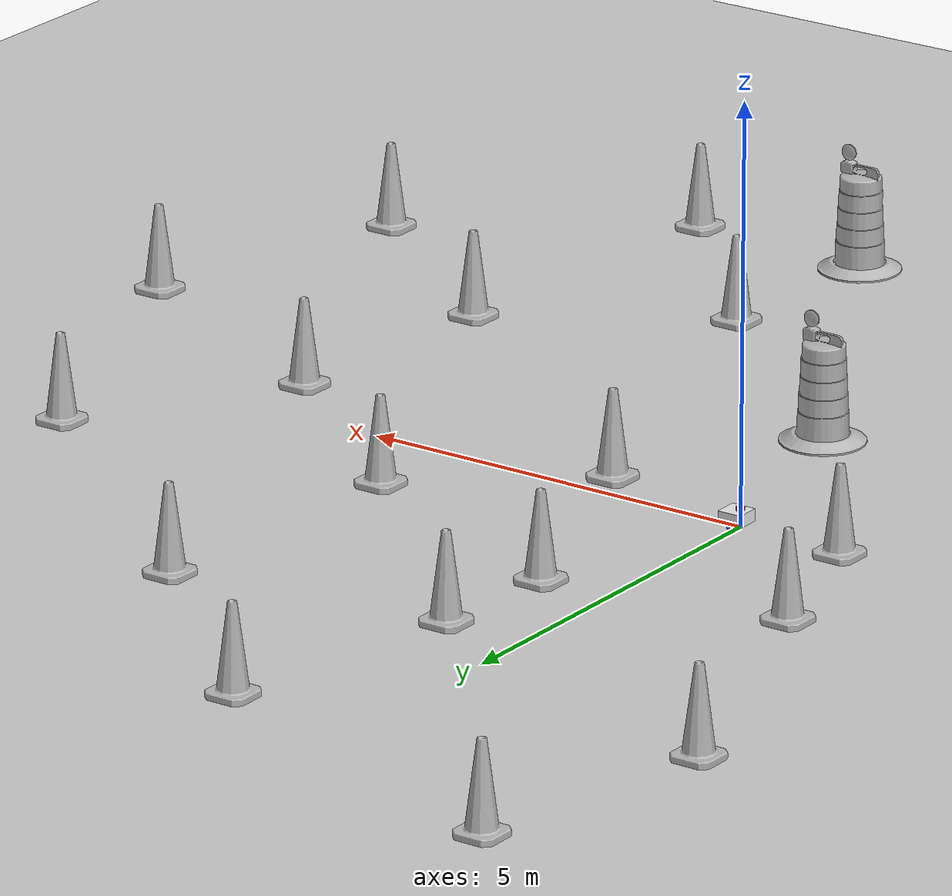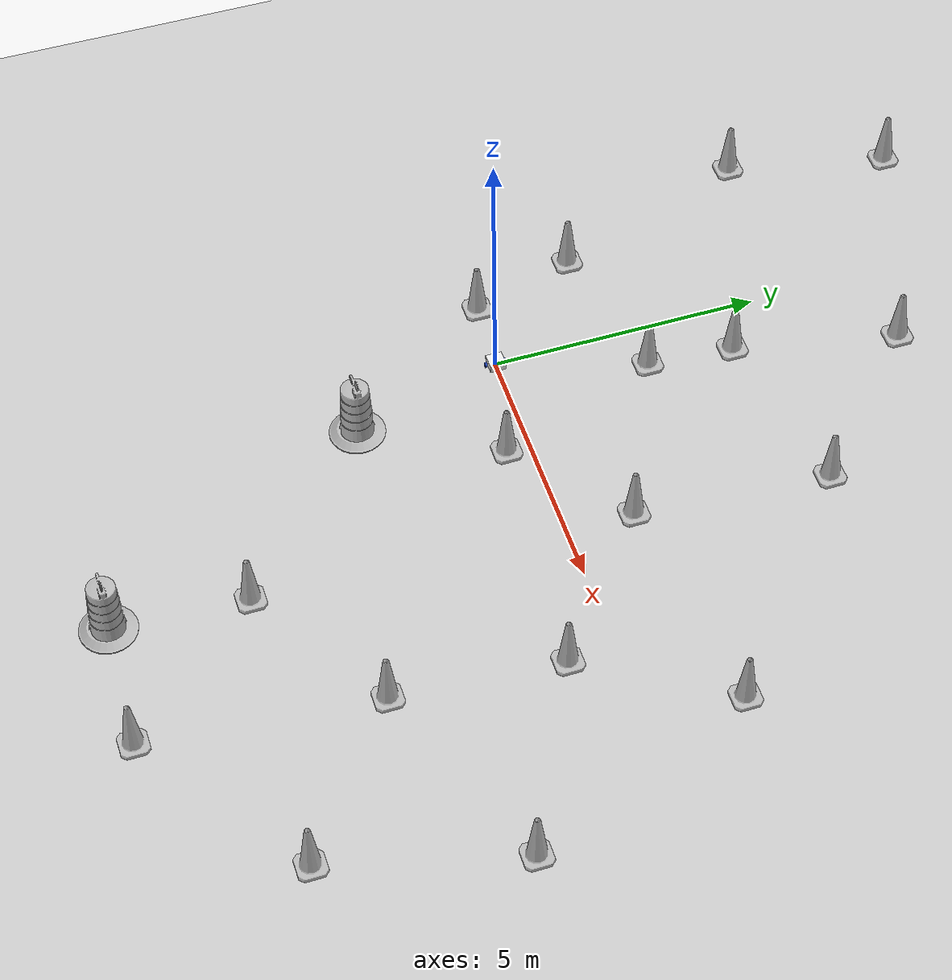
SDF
<sdf version="1.7">
 <world name="default">
  <light name="sun" type="directional">
   <pose>0 0 10 0 -0 0</pose>
   <diffuse>0.8 0.8 0.8 1</diffuse>
   <specular>0.2 0.2 0.2 1</specular>
   <attenuation>
    <range>1000</range>
    <constant>0.9</constant>
    <linear>0.01</linear>
    <quadratic>0.001</quadratic>
   </attenuation>
   <direction>-0.5 0.1 -0.9</direction>
   <spot><inner_angle>0</inner_angle><outer_angle>0</outer_angle><falloff>0</falloff></spot>
  </light>
  <model name="ground_plane">
   <static>1</static>
   <link name="link">
    <collision name="collision">
     <geometry><plane><normal>0 0 1</normal><size>100 100</size></plane></geometry>
     <surface><friction><ode><mu>100</mu><mu2>50</mu2></ode></friction></surface>
    </collision>
    <visual name="visual">
     <cast_shadows>0</cast_shadows>
     <geometry><plane><normal>0 0 1</normal><size>100 100</size></plane></geometry>
     <material>
      <script><uri>file://media/materials/scripts/gazebo.material</uri><name>Gazebo/Grey</name></script>
     </material>
    </visual>
   </link>
  </model>
  <gravity>0 0 -9.8</gravity>
  <magnetic_field>6e-06 2.3e-05 -4.2e-05</magnetic_field>
  <atmosphere type="adiabatic"/>
  <physics type="ode">
   <max_step_size>0.001</max_step_size>
   <real_time_factor>1</real_time_factor>
   <real_time_update_rate>1000</real_time_update_rate>
  </physics>
  <scene><ambient>0.4 0.4 0.4 1</ambient><background>0.7 0.7 0.7 1</background><shadows>1</shadows></scene>
  <audio><device>default</device></audio>
  <spherical_coordinates>
   <surface_model>EARTH_WGS84</surface_model>
   <latitude_deg>0</latitude_deg>
   <longitude_deg>0</longitude_deg>
   <elevation>0</elevation>
   <heading_deg>0</heading_deg>
  </spherical_coordinates>
  <model name="my_bot">
   <link name="base_link">
    <inertial>
     <pose>0.055714 0 0.078571 0 -0 0</pose>
     <mass>0.7</mass>
     <inertia>
      <ixx>0.0064169</ixx>
      <ixy>0</ixy>
      <ixz>0.00118929</ixz>
      <iyy>0.00745405</iyy>
      <iyz>0</iyz>
      <izz>0.00876214</izz>
     </inertia>
    </inertial>
    <collision name="base_link_fixed_joint_lump__chassis_collision">
     <pose>0.05 0 0.075 0 -0 0</pose>
     <geometry><box><size>0.3 0.3 0.15</size></box></geometry>
    </collision>
    <collision name="base_link_fixed_joint_lump__caster_wheel_collision_1">
     <pose>0.14 0 0 0 -0 0</pose>
     <geometry><sphere><radius>0.05</radius></sphere></geometry>
     <surface><friction><ode><mu>0.001</mu><mu2>0.001</mu2></ode></friction></surface>
    </collision>
    <collision name="base_link_fixed_joint_lump__laser_frame_collision_2">
     <pose>0 0 0.175 0 -0 0</pose>
     <geometry><cylinder><length>0.04</length><radius>0.05</radius></cylinder></geometry>
    </collision>
    <visual name="base_link_fixed_joint_lump__chassis_visual">
     <pose>0.05 0 0.075 0 -0 0</pose>
     <geometry><box><size>0.3 0.3 0.15</size></box></geometry>
     <material>
      <script><name>Gazebo/White</name><uri>file://media/materials/scripts/gazebo.material</uri></script>
     </material>
    </visual>
    <visual name="base_link_fixed_joint_lump__caster_wheel_visual_1">
     <pose>0.14 0 0 0 -0 0</pose>
     <geometry><sphere><radius>0.05</radius></sphere></geometry>
     <material>
      <script><name>Gazebo/Black</name><uri>file://media/materials/scripts/gazebo.material</uri></script>
     </material>
    </visual>
    <visual name="base_link_fixed_joint_lump__laser_frame_visual_2">
     <pose>0 0 0.175 0 -0 0</pose>
     <geometry><cylinder><length>0.04</length><radius>0.05</radius></cylinder></geometry>
     <material>
      <script><name>Gazebo/Red</name><uri>file://media/materials/scripts/gazebo.material</uri></script>
     </material>
    </visual>
    <sensor name="laser" type="ray">
     <visualize>1</visualize>
     <update_rate>10</update_rate>
     <ray>
      <scan>
       <horizontal>
        <samples>360</samples>
        <min_angle>-3.14</min_angle>
        <max_angle>3.14</max_angle>
        <resolution>1</resolution>
       </horizontal>
       <vertical><samples>1</samples><min_angle>0</min_angle><max_angle>0</max_angle></vertical>
      </scan>
      <range><min>0.3</min><max>12</max></range>
     </ray>
     <plugin name="laser_controller" filename="libgazebo_ros_ray_sensor.so">
      <ros><argument>~/out:=scan</argument></ros>
      <output_type>sensor_msgs/LaserScan</output_type>
      <frame_name>laser_frame</frame_name>
     </plugin>
     <pose>0 0 0.175 0 -0 0</pose>
    </sensor>
   </link>
   <joint name="left_wheel_joint" type="revolute">
    <pose relative_to="base_link">0 0.175 0 -1.5708 0 0</pose>
    <parent>base_link</parent>
    <child>left_wheel</child>
    <axis>
     <xyz>0 0 1</xyz>
     <limit><lower>-1e+16</lower><upper>1e+16</upper></limit>
     <dynamics><spring_reference>0</spring_reference><spring_stiffness>0</spring_stiffness></dynamics>
    </axis>
   </joint>
   <link name="left_wheel">
    <pose relative_to="left_wheel_joint">0 0 0 0 -0 0</pose>
    <inertial>
     <mass>0.1</mass>
     <inertia>
      <ixx>7.58333e-05</ixx>
      <ixy>0</ixy>
      <ixz>0</ixz>
      <iyy>7.58333e-05</iyy>
      <iyz>0</iyz>
      <izz>0.000125</izz>
     </inertia>
    </inertial>
    <collision name="left_wheel_collision">
     <geometry><cylinder><length>0.04</length><radius>0.05</radius></cylinder></geometry>
    </collision>
    <visual name="left_wheel_visual">
     <geometry><cylinder><length>0.04</length><radius>0.05</radius></cylinder></geometry>
     <material>
      <script><name>Gazebo/Blue</name><uri>file://media/materials/scripts/gazebo.material</uri></script>
     </material>
    </visual>
   </link>
   <joint name="right_wheel_joint" type="revolute">
    <pose relative_to="base_link">0 -0.175 0 1.5708 -0 0</pose>
    <parent>base_link</parent>
    <child>right_wheel</child>
    <axis>
     <xyz>0 0 -1</xyz>
     <limit><lower>-1e+16</lower><upper>1e+16</upper></limit>
     <dynamics><spring_reference>0</spring_reference><spring_stiffness>0</spring_stiffness></dynamics>
    </axis>
   </joint>
   <link name="right_wheel">
    <pose relative_to="right_wheel_joint">0 0 0 0 -0 0</pose>
    <inertial>
     <mass>0.1</mass>
     <inertia>
      <ixx>7.58333e-05</ixx>
      <ixy>0</ixy>
      <ixz>0</ixz>
      <iyy>7.58333e-05</iyy>
      <iyz>0</iyz>
      <izz>0.000125</izz>
     </inertia>
    </inertial>
    <collision name="right_wheel_collision">
     <geometry><cylinder><length>0.04</length><radius>0.05</radius></cylinder></geometry>
    </collision>
    <visual name="right_wheel_visual">
     <geometry><cylinder><length>0.04</length><radius>0.05</radius></cylinder></geometry>
     <material>
      <script><name>Gazebo/Blue</name><uri>file://media/materials/scripts/gazebo.material</uri></script>
     </material>
    </visual>
   </link>
   <static>0</static>
   <plugin name="diff_drive" filename="libgazebo_ros_diff_drive.so">
    <left_joint>left_wheel_joint</left_joint>
    <right_joint>right_wheel_joint</right_joint>
    <wheel_separation>0.35</wheel_separation>
    <wheel_diameter>0.1</wheel_diameter>
    <max_wheel_torque>200</max_wheel_torque>
    <max_wheel_acceleration>10.0</max_wheel_acceleration>
    <odometry_frame>odom</odometry_frame>
    <robot_base_frame>base_link</robot_base_frame>
    <publish_odom>1</publish_odom>
    <publish_odom_tf>1</publish_odom_tf>
    <publish_wheel_tf>1</publish_wheel_tf>
   </plugin>
   <pose>0.004448 3.1e-05 0.05 -0 1.2e-05 9.9e-05</pose>
  </model>
  <model name="Construction Cone">
   <link name="link">
    <collision name="collision">
     <geometry>
      <mesh><scale>10 10 10</scale><uri>model://construction_cone/meshes/construction_cone.dae</uri></mesh>
     </geometry>
    </collision>
    <visual name="visual">
     <geometry>
      <mesh><scale>10 10 10</scale><uri>model://construction_cone/meshes/construction_cone.dae</uri></mesh>
     </geometry>
    </visual>
    <inertial>
     <inertia><ixx>1</ixx><ixy>0</ixy><ixz>0</ixz><iyy>1</iyy><iyz>0</iyz><izz>1</izz></inertia>
     <mass>1</mass>
    </inertial>
   </link>
   <pose>-1.37739 0.100467 -0 0 -0 0</pose>
  </model>
  <model name="Construction Cone_0">
   <link name="link">
    <collision name="collision">
     <geometry>
      <mesh><scale>10 10 10</scale><uri>model://construction_cone/meshes/construction_cone.dae</uri></mesh>
     </geometry>
    </collision>
    <visual name="visual">
     <geometry>
      <mesh><scale>10 10 10</scale><uri>model://construction_cone/meshes/construction_cone.dae</uri></mesh>
     </geometry>
    </visual>
    <inertial>
     <inertia><ixx>1</ixx><ixy>0</ixy><ixz>0</ixz><iyy>1</iyy><iyz>0</iyz><izz>1</izz></inertia>
     <mass>1</mass>
    </inertial>
   </link>
   <pose>-1.99169 2.06443 -1e-05 0 -0 0</pose>
  </model>
  <model name="Construction Cone_1">
   <link name="link">
    <collision name="collision">
     <geometry>
      <mesh><scale>10 10 10</scale><uri>model://construction_cone/meshes/construction_cone.dae</uri></mesh>
     </geometry>
    </collision>
    <visual name="visual">
     <geometry>
      <mesh><scale>10 10 10</scale><uri>model://construction_cone/meshes/construction_cone.dae</uri></mesh>
     </geometry>
    </visual>
    <inertial>
     <inertia><ixx>1</ixx><ixy>0</ixy><ixz>0</ixz><iyy>1</iyy><iyz>0</iyz><izz>1</izz></inertia>
     <mass>1</mass>
    </inertial>
   </link>
   <pose>-3.36347 5.82388 -0 0 -1e-06 0</pose>
  </model>
  <model name="Construction Cone_2">
   <link name="link">
    <collision name="collision">
     <geometry>
      <mesh><scale>10 10 10</scale><uri>model://construction_cone/meshes/construction_cone.dae</uri></mesh>
     </geometry>
    </collision>
    <visual name="visual">
     <geometry>
      <mesh><scale>10 10 10</scale><uri>model://construction_cone/meshes/construction_cone.dae</uri></mesh>
     </geometry>
    </visual>
    <inertial>
     <inertia><ixx>1</ixx><ixy>0</ixy><ixz>0</ixz><iyy>1</iyy><iyz>0</iyz><izz>1</izz></inertia>
     <mass>1</mass>
    </inertial>
   </link>
   <pose>-2.6964 8.79624 -3e-06 3e-06 1e-06 -0</pose>
  </model>
  <model name="Construction Cone_3">
   <link name="link">
    <collision name="collision">
     <geometry>
      <mesh><scale>10 10 10</scale><uri>model://construction_cone/meshes/construction_cone.dae</uri></mesh>
     </geometry>
    </collision>
    <visual name="visual">
     <geometry>
      <mesh><scale>10 10 10</scale><uri>model://construction_cone/meshes/construction_cone.dae</uri></mesh>
     </geometry>
    </visual>
    <inertial>
     <inertia><ixx>1</ixx><ixy>0</ixy><ixz>0</ixz><iyy>1</iyy><iyz>0</iyz><izz>1</izz></inertia>
     <mass>1</mass>
    </inertial>
   </link>
   <pose>1.63837 7.23812 -0 1e-06 -0 0</pose>
  </model>
  <model name="Construction Cone_4">
   <link name="link">
    <collision name="collision">
     <geometry>
      <mesh><scale>10 10 10</scale><uri>model://construction_cone/meshes/construction_cone.dae</uri></mesh>
     </geometry>
    </collision>
    <visual name="visual">
     <geometry>
      <mesh><scale>10 10 10</scale><uri>model://construction_cone/meshes/construction_cone.dae</uri></mesh>
     </geometry>
    </visual>
    <inertial>
     <inertia><ixx>1</ixx><ixy>0</ixy><ixz>0</ixz><iyy>1</iyy><iyz>0</iyz><izz>1</izz></inertia>
     <mass>1</mass>
    </inertial>
   </link>
   <pose>4.31511 4.81251 -0 0 -1e-06 0</pose>
  </model>
  <model name="Construction Cone_5">
   <link name="link">
    <collision name="collision">
     <geometry>
      <mesh><scale>10 10 10</scale><uri>model://construction_cone/meshes/construction_cone.dae</uri></mesh>
     </geometry>
    </collision>
    <visual name="visual">
     <geometry>
      <mesh><scale>10 10 10</scale><uri>model://construction_cone/meshes/construction_cone.dae</uri></mesh>
     </geometry>
    </visual>
    <inertial>
     <inertia><ixx>1</ixx><ixy>0</ixy><ixz>0</ixz><iyy>1</iyy><iyz>0</iyz><izz>1</izz></inertia>
     <mass>1</mass>
    </inertial>
   </link>
   <pose>8.22411 1.70239 -0 0 -0 0</pose>
  </model>
  <model name="Construction Cone_6">
   <link name="link">
    <collision name="collision">
     <geometry>
      <mesh><scale>10 10 10</scale><uri>model://construction_cone/meshes/construction_cone.dae</uri></mesh>
     </geometry>
    </collision>
    <visual name="visual">
     <geometry>
      <mesh><scale>10 10 10</scale><uri>model://construction_cone/meshes/construction_cone.dae</uri></mesh>
     </geometry>
    </visual>
    <inertial>
     <inertia><ixx>1</ixx><ixy>0</ixy><ixz>0</ixz><iyy>1</iyy><iyz>0</iyz><izz>1</izz></inertia>
     <mass>1</mass>
    </inertial>
   </link>
   <pose>10.0157 -2.51914 -0 0 -0 0</pose>
  </model>
  <model name="Construction Cone_7">
   <link name="link">
    <collision name="collision">
     <geometry>
      <mesh><scale>10 10 10</scale><uri>model://construction_cone/meshes/construction_cone.dae</uri></mesh>
     </geometry>
    </collision>
    <visual name="visual">
     <geometry>
      <mesh><scale>10 10 10</scale><uri>model://construction_cone/meshes/construction_cone.dae</uri></mesh>
     </geometry>
    </visual>
    <inertial>
     <inertia><ixx>1</ixx><ixy>0</ixy><ixz>0</ixz><iyy>1</iyy><iyz>0</iyz><izz>1</izz></inertia>
     <mass>1</mass>
    </inertial>
   </link>
   <pose>9.09216 -5.96191 -0 0 -0 0</pose>
  </model>
  <model name="Construction Cone_8">
   <link name="link">
    <collision name="collision">
     <geometry>
      <mesh><scale>10 10 10</scale><uri>model://construction_cone/meshes/construction_cone.dae</uri></mesh>
     </geometry>
    </collision>
    <visual name="visual">
     <geometry>
      <mesh><scale>10 10 10</scale><uri>model://construction_cone/meshes/construction_cone.dae</uri></mesh>
     </geometry>
    </visual>
    <inertial>
     <inertia><ixx>1</ixx><ixy>0</ixy><ixz>0</ixz><iyy>1</iyy><iyz>0</iyz><izz>1</izz></inertia>
     <mass>1</mass>
    </inertial>
   </link>
   <pose>6.0046 -8.10721 -0 0 -0 0</pose>
  </model>
  <model name="Construction Cone_9">
   <link name="link">
    <collision name="collision">
     <geometry>
      <mesh><scale>10 10 10</scale><uri>model://construction_cone/meshes/construction_cone.dae</uri></mesh>
     </geometry>
    </collision>
    <visual name="visual">
     <geometry>
      <mesh><scale>10 10 10</scale><uri>model://construction_cone/meshes/construction_cone.dae</uri></mesh>
     </geometry>
    </visual>
    <inertial>
     <inertia><ixx>1</ixx><ixy>0</ixy><ixz>0</ixz><iyy>1</iyy><iyz>0</iyz><izz>1</izz></inertia>
     <mass>1</mass>
    </inertial>
   </link>
   <pose>2.02293 -0.431569 -1e-05 0 -0 0</pose>
  </model>
  <model name="Construction Cone_10">
   <link name="link">
    <collision name="collision">
     <geometry>
      <mesh><scale>10 10 10</scale><uri>model://construction_cone/meshes/construction_cone.dae</uri></mesh>
     </geometry>
    </collision>
    <visual name="visual">
     <geometry>
      <mesh><scale>10 10 10</scale><uri>model://construction_cone/meshes/construction_cone.dae</uri></mesh>
     </geometry>
    </visual>
    <inertial>
     <inertia><ixx>1</ixx><ixy>0</ixy><ixz>0</ixz><iyy>1</iyy><iyz>0</iyz><izz>1</izz></inertia>
     <mass>1</mass>
    </inertial>
   </link>
   <pose>0.866484 2.64384 -0 0 -0 0</pose>
  </model>
  <model name="Construction Cone_11">
   <link name="link">
    <collision name="collision">
     <geometry>
      <mesh><scale>10 10 10</scale><uri>model://construction_cone/meshes/construction_cone.dae</uri></mesh>
     </geometry>
    </collision>
    <visual name="visual">
     <geometry>
      <mesh><scale>10 10 10</scale><uri>model://construction_cone/meshes/construction_cone.dae</uri></mesh>
     </geometry>
    </visual>
    <inertial>
     <inertia><ixx>1</ixx><ixy>0</ixy><ixz>0</ixz><iyy>1</iyy><iyz>0</iyz><izz>1</izz></inertia>
     <mass>1</mass>
    </inertial>
   </link>
   <pose>0.99659 4.24286 -0 0 -0 0</pose>
  </model>
  <model name="Construction Cone_12">
   <link name="link">
    <collision name="collision">
     <geometry>
      <mesh><scale>10 10 10</scale><uri>model://construction_cone/meshes/construction_cone.dae</uri></mesh>
     </geometry>
    </collision>
    <visual name="visual">
     <geometry>
      <mesh><scale>10 10 10</scale><uri>model://construction_cone/meshes/construction_cone.dae</uri></mesh>
     </geometry>
    </visual>
    <inertial>
     <inertia><ixx>1</ixx><ixy>0</ixy><ixz>0</ixz><iyy>1</iyy><iyz>0</iyz><izz>1</izz></inertia>
     <mass>1</mass>
    </inertial>
   </link>
   <pose>4.04143 1.24177 -1e-05 -1e-06 0 0</pose>
  </model>
  <model name="Construction Cone_13">
   <link name="link">
    <collision name="collision">
     <geometry>
      <mesh><scale>10 10 10</scale><uri>model://construction_cone/meshes/construction_cone.dae</uri></mesh>
     </geometry>
    </collision>
    <visual name="visual">
     <geometry>
      <mesh><scale>10 10 10</scale><uri>model://construction_cone/meshes/construction_cone.dae</uri></mesh>
     </geometry>
    </visual>
    <inertial>
     <inertia><ixx>1</ixx><ixy>0</ixy><ixz>0</ixz><iyy>1</iyy><iyz>0</iyz><izz>1</izz></inertia>
     <mass>1</mass>
    </inertial>
   </link>
   <pose>6.64777 -0.855109 -0 0 -0 0</pose>
  </model>
  <model name="Construction Cone_14">
   <link name="link">
    <collision name="collision">
     <geometry>
      <mesh><scale>10 10 10</scale><uri>model://construction_cone/meshes/construction_cone.dae</uri></mesh>
     </geometry>
    </collision>
    <visual name="visual">
     <geometry>
      <mesh><scale>10 10 10</scale><uri>model://construction_cone/meshes/construction_cone.dae</uri></mesh>
     </geometry>
    </visual>
    <inertial>
     <inertia><ixx>1</ixx><ixy>0</ixy><ixz>0</ixz><iyy>1</iyy><iyz>0</iyz><izz>1</izz></inertia>
     <mass>1</mass>
    </inertial>
   </link>
   <pose>6.41679 -3.91255 -0 0 -1e-06 0</pose>
  </model>
  <model name="Construction Cone_15">
   <link name="link">
    <collision name="collision">
     <geometry>
      <mesh><scale>10 10 10</scale><uri>model://construction_cone/meshes/construction_cone.dae</uri></mesh>
     </geometry>
    </collision>
    <visual name="visual">
     <geometry>
      <mesh><scale>10 10 10</scale><uri>model://construction_cone/meshes/construction_cone.dae</uri></mesh>
     </geometry>
    </visual>
    <inertial>
     <inertia><ixx>1</ixx><ixy>0</ixy><ixz>0</ixz><iyy>1</iyy><iyz>0</iyz><izz>1</izz></inertia>
     <mass>1</mass>
    </inertial>
   </link>
   <pose>3.77353 -5.5618 -9e-06 -1e-06 -0 -0</pose>
  </model>
  <model name="Construction Barrel">
   <link name="link">
    <inertial>
     <pose>0 0 0.4 0 -0 0</pose>
     <mass>500</mass>
     <inertia><ixx>51.2096</ixx><iyy>51.2096</iyy><izz>25</izz><ixy>0</ixy><ixz>0</ixz><iyz>0</iyz></inertia>
    </inertial>
    <collision name="collision">
     <geometry><mesh><uri>model://construction_barrel/meshes/construction_barrel.dae</uri></mesh></geometry>
    </collision>
    <visual name="visual">
     <geometry><mesh><uri>model://construction_barrel/meshes/construction_barrel.dae</uri></mesh></geometry>
    </visual>
   </link>
   <pose>3.61658 -7.99227 0 0 0 -3e-06</pose>
  </model>
  <model name="Construction Barrel_0">
   <link name="link">
    <inertial>
     <pose>0 0 0.4 0 -0 0</pose>
     <mass>500</mass>
     <inertia><ixx>51.2096</ixx><iyy>51.2096</iyy><izz>25</izz><ixy>0</ixy><ixz>0</ixz><iyz>0</iyz></inertia>
    </inertial>
    <collision name="collision">
     <geometry><mesh><uri>model://construction_barrel/meshes/construction_barrel.dae</uri></mesh></geometry>
    </collision>
    <visual name="visual">
     <geometry><mesh><uri>model://construction_barrel/meshes/construction_barrel.dae</uri></mesh></geometry>
    </visual>
   </link>
   <pose>0.757479 -2.82296 -1e-06 3e-06 -2e-06 -2e-06</pose>
  </model>
 </world>
</sdf>
